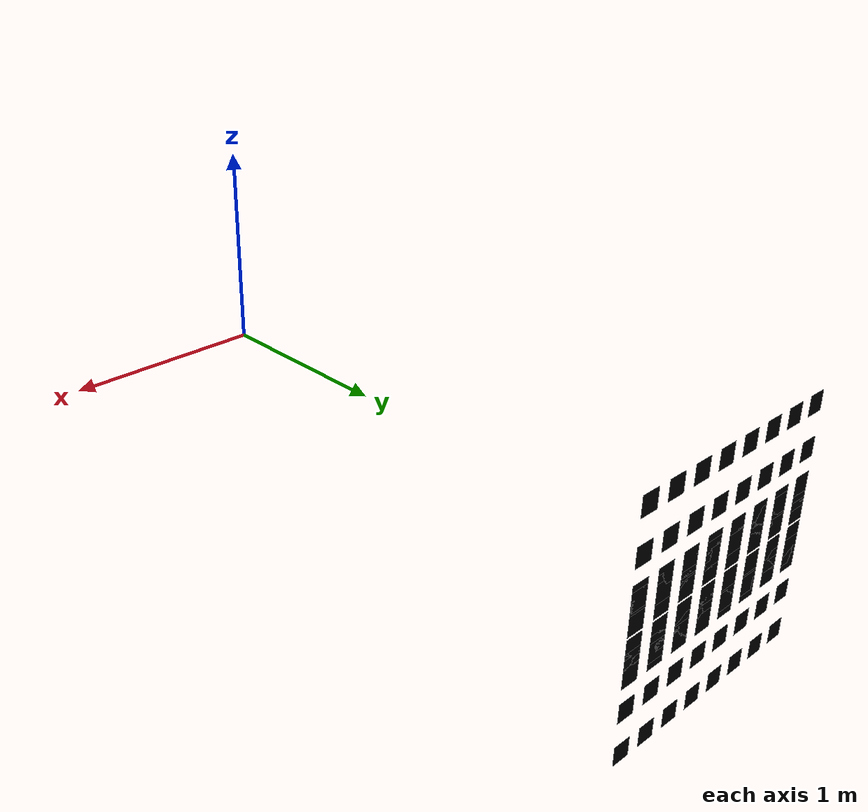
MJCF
<?xml version="1.0"?>
<mujoco>
    <compiler angle="radian"/>
    <option collision="predefined" timestep="0.002"/>
    <size njmax="1000" nconmax="400"/>
    <default class="main">
        <default class="eye">
            <position ctrllimited="true" kp="10"/>
            <joint type="hinge" stiffness="0.0" damping="0.05" armature="0.0" limited="true"/>
        </default>

        <default class="head-rotations">
            <position ctrllimited="true" kp="10"/>
            <joint type="hinge" stiffness="0.0" damping="0.25" armature="0.0" limited="true"/>
        </default>

        <default class="smart-glass-grid">
            <geom type="box" size="0.045 0.0000001 0.045" rgba="0 0 0 1"/>
        </default>

    </default>
    <asset>
        <texture type="skybox" builtin="gradient" rgb1="1 1 1" rgb2="0.6 0.8 1" width="256" height="256"/>
        <texture type="cube" name="blue-eye" file="assets/blue_eye_texture_circle.png" gridsize="3 4" gridlayout=".U..LFRB.D.."/>
        <material name="blue-eye" texture="blue-eye" texuniform="true"/>
        <mesh name="eye" file="assets/basic_eye_2.stl" scale="0.05 0.05 0.05"/>
    </asset>
    <worldbody>
        <light name="scene_directional_light" directional="true" castshadow="false" cutoff="4" exponent="20"
               diffuse="1 1 1" specular="0 0 0" pos=".9 .3 2.5"/>

        <camera name="env" pos="0.35 -0.35 0.15" euler="1.4 0.5 0.12"/>

        <body name="eye" pos="0 0 0" quat="0.7071068 0.7071068 0 0">
                <geom name="eye" type="sphere" size="0.0125" material="blue-eye" rgba="1 1 1 1" quat="0.6625191 0.0130711 0.7488417 0.0115643"/>
                <camera name="eye" fovy="90"/>
                <joint name="eye-joint-x" class="eye" axis="1 0 0" range="-0.7854 0.7854"/>
                <joint name="eye-joint-y" class="eye" axis="0 1 0" range="-0.7854 0.7854"/>
                <site name="rangefinder-site" quat="0 0 1 0"/>
        </body>

        <body name="head" pos="0 0 0">
            <body name="smart-glass-pane-interline-spacing-100" pos="0 3 0">
<!--                line gap = (3+1) * word height-->
                <geom name="grid-1" pos="-0.525 0 0.54" class="smart-glass-grid"/>
                <geom name="grid-2" pos="-0.375 0 0.54" class="smart-glass-grid"/>
                <geom name="grid-3" pos="-0.225 0 0.54" class="smart-glass-grid"/>
                <geom name="grid-4" pos="-0.075 0 0.54" class="smart-glass-grid"/>
                <geom name="grid-5" pos="0.075 0 0.54" class="smart-glass-grid"/>
                <geom name="grid-6" pos="0.225 0 0.54" class="smart-glass-grid"/>
                <geom name="grid-7" pos="0.375 0 0.54" class="smart-glass-grid"/>
                <geom name="grid-8" pos="0.525 0 0.54" class="smart-glass-grid"/>

                <geom name="grid-9" pos="-0.525 0 0.18" class="smart-glass-grid"/>
                <geom name="grid-10" pos="-0.375 0 0.18" class="smart-glass-grid"/>
                <geom name="grid-11" pos="-0.225 0 0.18" class="smart-glass-grid"/>
                <geom name="grid-12" pos="-0.075 0 0.18" class="smart-glass-grid"/>
                <geom name="grid-13" pos="0.075 0 0.18" class="smart-glass-grid"/>
                <geom name="grid-14" pos="0.225 0 0.18" class="smart-glass-grid"/>
                <geom name="grid-15" pos="0.375 0 0.18" class="smart-glass-grid"/>
                <geom name="grid-16" pos="0.525 0 0.18" class="smart-glass-grid"/>

                <geom name="grid-17" pos="-0.525 0 -0.18" class="smart-glass-grid"/>
                <geom name="grid-18" pos="-0.375 0 -0.18" class="smart-glass-grid"/>
                <geom name="grid-19" pos="-0.225 0 -0.18" class="smart-glass-grid"/>
                <geom name="grid-20" pos="-0.075 0 -0.18" class="smart-glass-grid"/>
                <geom name="grid-21" pos="0.075 0 -0.18" class="smart-glass-grid"/>
                <geom name="grid-22" pos="0.225 0 -0.18" class="smart-glass-grid"/>
                <geom name="grid-23" pos="0.375 0 -0.18" class="smart-glass-grid"/>
                <geom name="grid-24" pos="0.525 0 -0.18" class="smart-glass-grid"/>

                <geom name="grid-25" pos="-0.525 0 -0.54" class="smart-glass-grid"/>
                <geom name="grid-26" pos="-0.375 0 -0.54" class="smart-glass-grid"/>
                <geom name="grid-27" pos="-0.225 0 -0.54" class="smart-glass-grid"/>
                <geom name="grid-28" pos="-0.075 0 -0.54" class="smart-glass-grid"/>
                <geom name="grid-29" pos="0.075 0 -0.54" class="smart-glass-grid"/>
                <geom name="grid-30" pos="0.225 0 -0.54" class="smart-glass-grid"/>
                <geom name="grid-31" pos="0.375 0 -0.54" class="smart-glass-grid"/>
                <geom name="grid-32" pos="0.525 0 -0.54" class="smart-glass-grid"/>
            </body>

            <body name="smart-glass-pane-interline-spacing-50" pos="0 3 0">
<!--                line gap = (1.5+1) * word height-->
                <geom name="grid-33" pos="-0.525 0 0.3375" class="smart-glass-grid"/>
                <geom name="grid-34" pos="-0.375 0 0.3375" class="smart-glass-grid"/>
                <geom name="grid-35" pos="-0.225 0 0.3375" class="smart-glass-grid"/>
                <geom name="grid-36" pos="-0.075 0 0.3375" class="smart-glass-grid"/>
                <geom name="grid-37" pos="0.075 0 0.3375" class="smart-glass-grid"/>
                <geom name="grid-38" pos="0.225 0 0.3375" class="smart-glass-grid"/>
                <geom name="grid-39" pos="0.375 0 0.3375" class="smart-glass-grid"/>
                <geom name="grid-40" pos="0.525 0 0.3375" class="smart-glass-grid"/>

                <geom name="grid-41" pos="-0.525 0 0.1125" class="smart-glass-grid"/>
                <geom name="grid-42" pos="-0.375 0 0.1125" class="smart-glass-grid"/>
                <geom name="grid-43" pos="-0.225 0 0.1125" class="smart-glass-grid"/>
                <geom name="grid-44" pos="-0.075 0 0.1125" class="smart-glass-grid"/>
                <geom name="grid-45" pos="0.075 0 0.1125" class="smart-glass-grid"/>
                <geom name="grid-46" pos="0.225 0 0.1125" class="smart-glass-grid"/>
                <geom name="grid-47" pos="0.375 0 0.1125" class="smart-glass-grid"/>
                <geom name="grid-48" pos="0.525 0 0.1125" class="smart-glass-grid"/>

                <geom name="grid-49" pos="-0.525 0 -0.1125" class="smart-glass-grid"/>
                <geom name="grid-50" pos="-0.375 0 -0.1125" class="smart-glass-grid"/>
                <geom name="grid-51" pos="-0.225 0 -0.1125" class="smart-glass-grid"/>
                <geom name="grid-52" pos="-0.075 0 -0.1125" class="smart-glass-grid"/>
                <geom name="grid-53" pos="0.075 0 -0.1125" class="smart-glass-grid"/>
                <geom name="grid-54" pos="0.225 0 -0.1125" class="smart-glass-grid"/>
                <geom name="grid-55" pos="0.375 0 -0.1125" class="smart-glass-grid"/>
                <geom name="grid-56" pos="0.525 0 -0.1125" class="smart-glass-grid"/>

                <geom name="grid-57" pos="-0.525 0 -0.3375" class="smart-glass-grid"/>
                <geom name="grid-58" pos="-0.375 0 -0.3375" class="smart-glass-grid"/>
                <geom name="grid-59" pos="-0.225 0 -0.3375" class="smart-glass-grid"/>
                <geom name="grid-60" pos="-0.075 0 -0.3375" class="smart-glass-grid"/>
                <geom name="grid-61" pos="0.075 0 -0.3375" class="smart-glass-grid"/>
                <geom name="grid-62" pos="0.225 0 -0.3375" class="smart-glass-grid"/>
                <geom name="grid-63" pos="0.375 0 -0.3375" class="smart-glass-grid"/>
                <geom name="grid-64" pos="0.525 0 -0.3375" class="smart-glass-grid"/>
            </body>

            <body name="smart-glass-pane-interline-spacing-0" pos="0 3 0">
<!--                line gap = (0+1) * word height-->
                <geom name="grid-65" pos="-0.525 0 0.15" class="smart-glass-grid"/>
                <geom name="grid-66" pos="-0.375 0 0.15" class="smart-glass-grid"/>
                <geom name="grid-67" pos="-0.225 0 0.15" class="smart-glass-grid"/>
                <geom name="grid-68" pos="-0.075 0 0.15" class="smart-glass-grid"/>
                <geom name="grid-69" pos="0.075 0 0.15" class="smart-glass-grid"/>
                <geom name="grid-70" pos="0.225 0 0.15" class="smart-glass-grid"/>
                <geom name="grid-71" pos="0.375 0 0.15" class="smart-glass-grid"/>
                <geom name="grid-72" pos="0.525 0 0.15" class="smart-glass-grid"/>

                <geom name="grid-73" pos="-0.525 0 0.05" class="smart-glass-grid"/>
                <geom name="grid-74" pos="-0.375 0 0.05" class="smart-glass-grid"/>
                <geom name="grid-75" pos="-0.225 0 0.05" class="smart-glass-grid"/>
                <geom name="grid-76" pos="-0.075 0 0.05" class="smart-glass-grid"/>
                <geom name="grid-77" pos="0.075 0 0.05" class="smart-glass-grid"/>
                <geom name="grid-78" pos="0.225 0 0.05" class="smart-glass-grid"/>
                <geom name="grid-79" pos="0.375 0 0.05" class="smart-glass-grid"/>
                <geom name="grid-80" pos="0.525 0 0.05" class="smart-glass-grid"/>

                <geom name="grid-81" pos="-0.525 0 -0.05" class="smart-glass-grid"/>
                <geom name="grid-82" pos="-0.375 0 -0.05" class="smart-glass-grid"/>
                <geom name="grid-83" pos="-0.225 0 -0.05" class="smart-glass-grid"/>
                <geom name="grid-84" pos="-0.075 0 -0.05" class="smart-glass-grid"/>
                <geom name="grid-85" pos="0.075 0 -0.05" class="smart-glass-grid"/>
                <geom name="grid-86" pos="0.225 0 -0.05" class="smart-glass-grid"/>
                <geom name="grid-87" pos="0.375 0 -0.05" class="smart-glass-grid"/>
                <geom name="grid-88" pos="0.525 0 -0.05" class="smart-glass-grid"/>

                <geom name="grid-89" pos="-0.525 0 -0.15" class="smart-glass-grid"/>
                <geom name="grid-90" pos="-0.375 0 -0.15" class="smart-glass-grid"/>
                <geom name="grid-91" pos="-0.225 0 -0.15" class="smart-glass-grid"/>
                <geom name="grid-92" pos="-0.075 0 -0.15" class="smart-glass-grid"/>
                <geom name="grid-93" pos="0.075 0 -0.15" class="smart-glass-grid"/>
                <geom name="grid-94" pos="0.225 0 -0.15" class="smart-glass-grid"/>
                <geom name="grid-95" pos="0.375 0 -0.15" class="smart-glass-grid"/>
                <geom name="grid-96" pos="0.525 0 -0.15" class="smart-glass-grid"/>
            </body>

            <joint name="head-joint-x" class="head-rotations" axis="1 0 0" range="-1 1"/>
            <joint name="head-joint-z" class="head-rotations" axis="0 0 1" range="-1 1"/>
        </body>

    </worldbody>
    <actuator>
        <position name="eye-x-motor" joint="eye-joint-x" class="eye" ctrlrange="-0.7854 0.7854"/>
        <position name="eye-y-motor" joint="eye-joint-y" class="eye" ctrlrange="-0.7854 0.7854"/>
        <position name="head-x-motor" joint="head-joint-x" class="head-rotations" ctrlrange="-0.07 0.07"/>
        <position name="head-z-motor" joint="head-joint-z" class="head-rotations" ctrlrange="-0.15 0.15"/>
    </actuator>
    <sensor>
        <rangefinder name="rangefinder" site="rangefinder-site"/>
    </sensor>
</mujoco>
